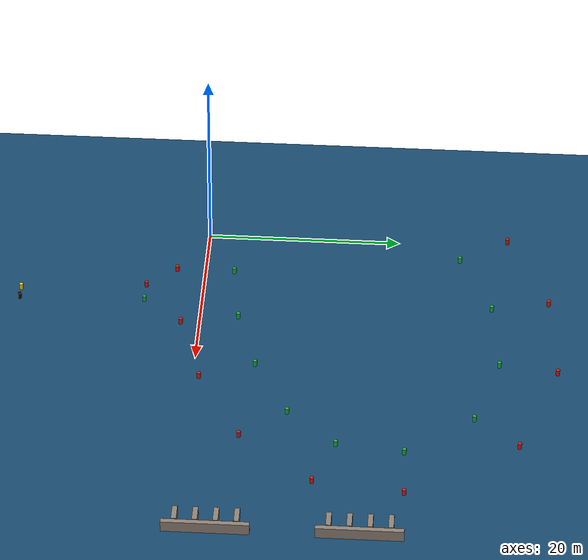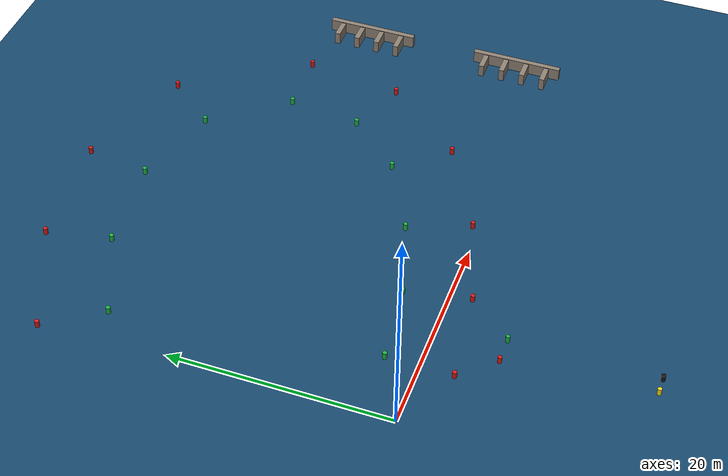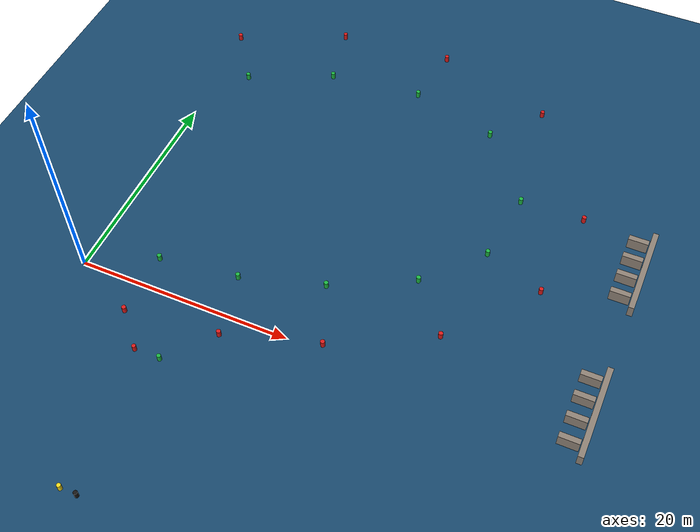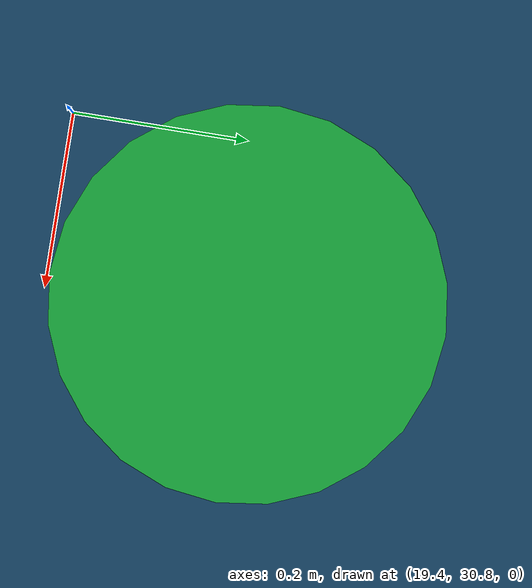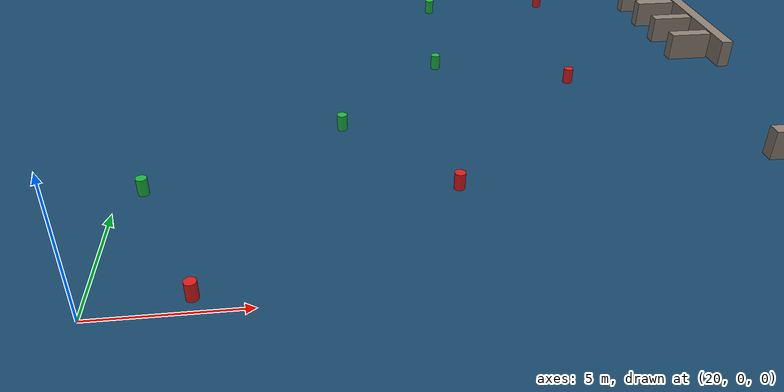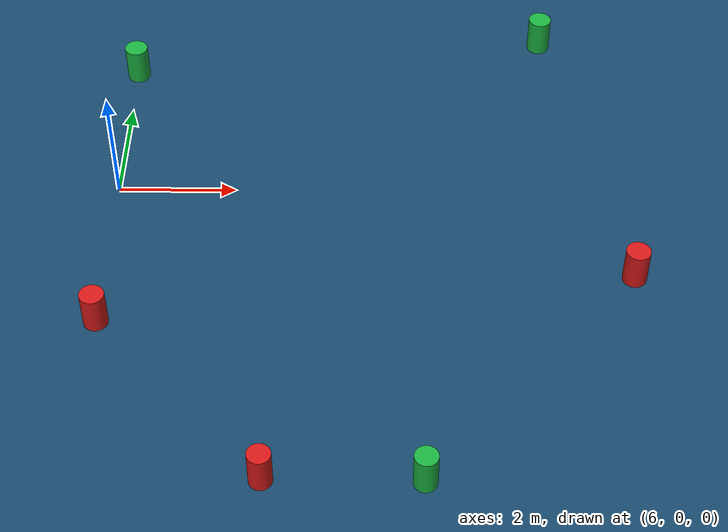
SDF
<?xml version="1.0" ?>
<!-- GENERATED by gen_course.py from course_wide.yaml. Edit the YAML, not this file. -->
<sdf version="1.10">
  <world name="roboboat_course">
    <physics name="fast" type="ignored">
      <max_step_size>0.005</max_step_size>
      <real_time_factor>1.0</real_time_factor>
      <real_time_update_rate>200</real_time_update_rate>
    </physics>
    <plugin filename="gz-sim-physics-system" name="gz::sim::systems::Physics"/>
    <plugin filename="gz-sim-user-commands-system" name="gz::sim::systems::UserCommands"/>
    <plugin filename="gz-sim-scene-broadcaster-system" name="gz::sim::systems::SceneBroadcaster"/>
    <plugin filename="gz-sim-imu-system" name="gz::sim::systems::Imu"/>
    <plugin filename="gz-sim-navsat-system" name="gz::sim::systems::NavSat"/>
    <plugin filename="gz-sim-sensors-system" name="gz::sim::systems::Sensors">
      <render_engine>ogre2</render_engine>
    </plugin>
    <scene>
      <ambient>0.85 0.88 0.92 1</ambient>
      <background>0.55 0.70 0.86 1</background>
      <grid>false</grid>
      <shadows>false</shadows>
    </scene>
    <light type="directional" name="sun">
      <cast_shadows>false</cast_shadows>
      <pose>0.0000 0.0000 40.0000 0.0000 0.0000 0.0000</pose>
      <diffuse>0.9 0.9 0.9 1</diffuse>
      <specular>0.2 0.2 0.2 1</specular>
      <direction>-0.4 0.3 -0.9</direction>
    </light>
    <gravity>0 0 -9.8</gravity>
    <spherical_coordinates>
      <surface_model>EARTH_WGS84</surface_model>
      <world_frame_orientation>ENU</world_frame_orientation>
      <latitude_deg>27.3872</latitude_deg>
      <longitude_deg>-82.459</longitude_deg>
      <elevation>3.0</elevation>
      <heading_deg>0</heading_deg>
    </spherical_coordinates>
    <model name="water">
      <static>true</static>
      <pose>0.0000 0.0000 -0.0200 0.0000 0.0000 0.0000</pose>
      <link name="link">
        <visual name="surface">
          <geometry>
            <box>
              <size>260.0000 260.0000 0.0400</size>
            </box>
          </geometry>
          <material>
            <ambient>0.090 0.280 0.420 1.000</ambient>
            <diffuse>0.090 0.280 0.420 1.000</diffuse>
            <specular>0.1 0.1 0.1 1</specular>
          </material>
        </visual>
      </link>
    </model>
    <model name="gate_start_left">
      <static>true</static>
      <pose>6.0000 3.0000 0.2000 0.0000 0.0000 0.0000</pose>
      <link name="link">
        <visual name="visual">
          <geometry>
            <cylinder>
              <radius>0.2000</radius>
              <length>0.9000</length>
            </cylinder>
          </geometry>
          <material>
            <ambient>0.100 0.700 0.250 1.000</ambient>
            <diffuse>0.100 0.700 0.250 1.000</diffuse>
            <specular>0.1 0.1 0.1 1</specular>
            <emissive>0.025 0.175 0.062 1</emissive>
          </material>
        </visual>
      </link>
    </model>
    <model name="gate_start_right">
      <static>true</static>
      <pose>6.0000 -3.0000 0.2000 0.0000 0.0000 0.0000</pose>
      <link name="link">
        <visual name="visual">
          <geometry>
            <cylinder>
              <radius>0.2000</radius>
              <length>0.9000</length>
            </cylinder>
          </geometry>
          <material>
            <ambient>0.850 0.100 0.100 1.000</ambient>
            <diffuse>0.850 0.100 0.100 1.000</diffuse>
            <specular>0.1 0.1 0.1 1</specular>
            <emissive>0.212 0.025 0.025 1</emissive>
          </material>
        </visual>
      </link>
    </model>
    <model name="gate_chan_a_left">
      <static>true</static>
      <pose>13.3763 3.9344 0.2000 0.0000 0.0000 0.0000</pose>
      <link name="link">
        <visual name="visual">
          <geometry>
            <cylinder>
              <radius>0.2000</radius>
              <length>0.9000</length>
            </cylinder>
          </geometry>
          <material>
            <ambient>0.100 0.700 0.250 1.000</ambient>
            <diffuse>0.100 0.700 0.250 1.000</diffuse>
            <specular>0.1 0.1 0.1 1</specular>
            <emissive>0.025 0.175 0.062 1</emissive>
          </material>
        </visual>
      </link>
    </model>
    <model name="gate_chan_a_right">
      <static>true</static>
      <pose>14.6237 -1.9344 0.2000 0.0000 0.0000 0.0000</pose>
      <link name="link">
        <visual name="visual">
          <geometry>
            <cylinder>
              <radius>0.2000</radius>
              <length>0.9000</length>
            </cylinder>
          </geometry>
          <material>
            <ambient>0.850 0.100 0.100 1.000</ambient>
            <diffuse>0.850 0.100 0.100 1.000</diffuse>
            <specular>0.1 0.1 0.1 1</specular>
            <emissive>0.212 0.025 0.025 1</emissive>
          </material>
        </visual>
      </link>
    </model>
    <model name="gate_chan_b_left">
      <static>true</static>
      <pose>20.8762 6.1816 0.2000 0.0000 0.0000 0.0000</pose>
      <link name="link">
        <visual name="visual">
          <geometry>
            <cylinder>
              <radius>0.2000</radius>
              <length>0.9000</length>
            </cylinder>
          </geometry>
          <material>
            <ambient>0.100 0.700 0.250 1.000</ambient>
            <diffuse>0.100 0.700 0.250 1.000</diffuse>
            <specular>0.1 0.1 0.1 1</specular>
            <emissive>0.025 0.175 0.062 1</emissive>
          </material>
        </visual>
      </link>
    </model>
    <model name="gate_chan_b_right">
      <static>true</static>
      <pose>23.1238 0.6184 0.2000 0.0000 0.0000 0.0000</pose>
      <link name="link">
        <visual name="visual">
          <geometry>
            <cylinder>
              <radius>0.2000</radius>
              <length>0.9000</length>
            </cylinder>
          </geometry>
          <material>
            <ambient>0.850 0.100 0.100 1.000</ambient>
            <diffuse>0.850 0.100 0.100 1.000</diffuse>
            <specular>0.1 0.1 0.1 1</specular>
            <emissive>0.212 0.025 0.025 1</emissive>
          </material>
        </visual>
      </link>
    </model>
    <model name="gate_chan_c_left">
      <static>true</static>
      <pose>28.0716 9.8981 0.2000 0.0000 0.0000 0.0000</pose>
      <link name="link">
        <visual name="visual">
          <geometry>
            <cylinder>
              <radius>0.2000</radius>
              <length>0.9000</length>
            </cylinder>
          </geometry>
          <material>
            <ambient>0.100 0.700 0.250 1.000</ambient>
            <diffuse>0.100 0.700 0.250 1.000</diffuse>
            <specular>0.1 0.1 0.1 1</specular>
            <emissive>0.025 0.175 0.062 1</emissive>
          </material>
        </visual>
      </link>
    </model>
    <model name="gate_chan_c_right">
      <static>true</static>
      <pose>31.9284 5.3019 0.2000 0.0000 0.0000 0.0000</pose>
      <link name="link">
        <visual name="visual">
          <geometry>
            <cylinder>
              <radius>0.2000</radius>
              <length>0.9000</length>
            </cylinder>
          </geometry>
          <material>
            <ambient>0.850 0.100 0.100 1.000</ambient>
            <diffuse>0.850 0.100 0.100 1.000</diffuse>
            <specular>0.1 0.1 0.1 1</specular>
            <emissive>0.212 0.025 0.025 1</emissive>
          </material>
        </visual>
      </link>
    </model>
    <model name="gate_chan_d_left">
      <static>true</static>
      <pose>32.6809 15.0261 0.2000 0.0000 0.0000 0.0000</pose>
      <link name="link">
        <visual name="visual">
          <geometry>
            <cylinder>
              <radius>0.2000</radius>
              <length>0.9000</length>
            </cylinder>
          </geometry>
          <material>
            <ambient>0.100 0.700 0.250 1.000</ambient>
            <diffuse>0.100 0.700 0.250 1.000</diffuse>
            <specular>0.1 0.1 0.1 1</specular>
            <emissive>0.025 0.175 0.062 1</emissive>
          </material>
        </visual>
      </link>
    </model>
    <model name="gate_chan_d_right">
      <static>true</static>
      <pose>38.3191 12.9739 0.2000 0.0000 0.0000 0.0000</pose>
      <link name="link">
        <visual name="visual">
          <geometry>
            <cylinder>
              <radius>0.2000</radius>
              <length>0.9000</length>
            </cylinder>
          </geometry>
          <material>
            <ambient>0.850 0.100 0.100 1.000</ambient>
            <diffuse>0.850 0.100 0.100 1.000</diffuse>
            <specular>0.1 0.1 0.1 1</specular>
            <emissive>0.212 0.025 0.025 1</emissive>
          </material>
        </visual>
      </link>
    </model>
    <model name="gate_speed_in_left">
      <static>true</static>
      <pose>33.5018 21.8953 0.2000 0.0000 0.0000 0.0000</pose>
      <link name="link">
        <visual name="visual">
          <geometry>
            <cylinder>
              <radius>0.2000</radius>
              <length>0.9000</length>
            </cylinder>
          </geometry>
          <material>
            <ambient>0.100 0.700 0.250 1.000</ambient>
            <diffuse>0.100 0.700 0.250 1.000</diffuse>
            <specular>0.1 0.1 0.1 1</specular>
            <emissive>0.025 0.175 0.062 1</emissive>
          </material>
        </visual>
      </link>
    </model>
    <model name="gate_speed_in_right">
      <static>true</static>
      <pose>39.4982 22.1047 0.2000 0.0000 0.0000 0.0000</pose>
      <link name="link">
        <visual name="visual">
          <geometry>
            <cylinder>
              <radius>0.2000</radius>
              <length>0.9000</length>
            </cylinder>
          </geometry>
          <material>
            <ambient>0.850 0.100 0.100 1.000</ambient>
            <diffuse>0.850 0.100 0.100 1.000</diffuse>
            <specular>0.1 0.1 0.1 1</specular>
            <emissive>0.212 0.025 0.025 1</emissive>
          </material>
        </visual>
      </link>
    </model>
    <model name="gate_speed_out_left">
      <static>true</static>
      <pose>28.0716 28.7019 0.2000 0.0000 0.0000 0.0000</pose>
      <link name="link">
        <visual name="visual">
          <geometry>
            <cylinder>
              <radius>0.2000</radius>
              <length>0.9000</length>
            </cylinder>
          </geometry>
          <material>
            <ambient>0.100 0.700 0.250 1.000</ambient>
            <diffuse>0.100 0.700 0.250 1.000</diffuse>
            <specular>0.1 0.1 0.1 1</specular>
            <emissive>0.025 0.175 0.062 1</emissive>
          </material>
        </visual>
      </link>
    </model>
    <model name="gate_speed_out_right">
      <static>true</static>
      <pose>31.9284 33.2981 0.2000 0.0000 0.0000 0.0000</pose>
      <link name="link">
        <visual name="visual">
          <geometry>
            <cylinder>
              <radius>0.2000</radius>
              <length>0.9000</length>
            </cylinder>
          </geometry>
          <material>
            <ambient>0.850 0.100 0.100 1.000</ambient>
            <diffuse>0.850 0.100 0.100 1.000</diffuse>
            <specular>0.1 0.1 0.1 1</specular>
            <emissive>0.212 0.025 0.025 1</emissive>
          </material>
        </visual>
      </link>
    </model>
    <model name="gate_return_a_left">
      <static>true</static>
      <pose>19.5825 31.0292 0.2000 0.0000 0.0000 0.0000</pose>
      <link name="link">
        <visual name="visual">
          <geometry>
            <cylinder>
              <radius>0.2000</radius>
              <length>0.9000</length>
            </cylinder>
          </geometry>
          <material>
            <ambient>0.100 0.700 0.250 1.000</ambient>
            <diffuse>0.100 0.700 0.250 1.000</diffuse>
            <specular>0.1 0.1 0.1 1</specular>
            <emissive>0.025 0.175 0.062 1</emissive>
          </material>
        </visual>
      </link>
    </model>
    <model name="gate_return_a_right">
      <static>true</static>
      <pose>20.4175 36.9708 0.2000 0.0000 0.0000 0.0000</pose>
      <link name="link">
        <visual name="visual">
          <geometry>
            <cylinder>
              <radius>0.2000</radius>
              <length>0.9000</length>
            </cylinder>
          </geometry>
          <material>
            <ambient>0.850 0.100 0.100 1.000</ambient>
            <diffuse>0.850 0.100 0.100 1.000</diffuse>
            <specular>0.1 0.1 0.1 1</specular>
            <emissive>0.212 0.025 0.025 1</emissive>
          </material>
        </visual>
      </link>
    </model>
    <model name="gate_return_b_left">
      <static>true</static>
      <pose>10.6237 30.0656 0.2000 0.0000 0.0000 0.0000</pose>
      <link name="link">
        <visual name="visual">
          <geometry>
            <cylinder>
              <radius>0.2000</radius>
              <length>0.9000</length>
            </cylinder>
          </geometry>
          <material>
            <ambient>0.100 0.700 0.250 1.000</ambient>
            <diffuse>0.100 0.700 0.250 1.000</diffuse>
            <specular>0.1 0.1 0.1 1</specular>
            <emissive>0.025 0.175 0.062 1</emissive>
          </material>
        </visual>
      </link>
    </model>
    <model name="gate_return_b_right">
      <static>true</static>
      <pose>9.3763 35.9344 0.2000 0.0000 0.0000 0.0000</pose>
      <link name="link">
        <visual name="visual">
          <geometry>
            <cylinder>
              <radius>0.2000</radius>
              <length>0.9000</length>
            </cylinder>
          </geometry>
          <material>
            <ambient>0.850 0.100 0.100 1.000</ambient>
            <diffuse>0.850 0.100 0.100 1.000</diffuse>
            <specular>0.1 0.1 0.1 1</specular>
            <emissive>0.212 0.025 0.025 1</emissive>
          </material>
        </visual>
      </link>
    </model>
    <model name="gate_finish_left">
      <static>true</static>
      <pose>2.7207 26.5425 0.2000 0.0000 0.0000 0.0000</pose>
      <link name="link">
        <visual name="visual">
          <geometry>
            <cylinder>
              <radius>0.2000</radius>
              <length>0.9000</length>
            </cylinder>
          </geometry>
          <material>
            <ambient>0.100 0.700 0.250 1.000</ambient>
            <diffuse>0.100 0.700 0.250 1.000</diffuse>
            <specular>0.1 0.1 0.1 1</specular>
            <emissive>0.025 0.175 0.062 1</emissive>
          </material>
        </visual>
      </link>
    </model>
    <model name="gate_finish_right">
      <static>true</static>
      <pose>-0.7207 31.4575 0.2000 0.0000 0.0000 0.0000</pose>
      <link name="link">
        <visual name="visual">
          <geometry>
            <cylinder>
              <radius>0.2000</radius>
              <length>0.9000</length>
            </cylinder>
          </geometry>
          <material>
            <ambient>0.850 0.100 0.100 1.000</ambient>
            <diffuse>0.850 0.100 0.100 1.000</diffuse>
            <specular>0.1 0.1 0.1 1</specular>
            <emissive>0.212 0.025 0.025 1</emissive>
          </material>
        </visual>
      </link>
    </model>
    <model name="gate_sprint_gate_left">
      <static>true</static>
      <pose>11.2000 -6.0000 0.2000 0.0000 0.0000 0.0000</pose>
      <link name="link">
        <visual name="visual">
          <geometry>
            <cylinder>
              <radius>0.1840</radius>
              <length>0.9000</length>
            </cylinder>
          </geometry>
          <material>
            <ambient>0.100 0.700 0.250 1.000</ambient>
            <diffuse>0.100 0.700 0.250 1.000</diffuse>
            <specular>0.1 0.1 0.1 1</specular>
            <emissive>0.025 0.175 0.062 1</emissive>
          </material>
        </visual>
      </link>
    </model>
    <model name="gate_sprint_gate_right">
      <static>true</static>
      <pose>8.8000 -6.0000 0.2000 0.0000 0.0000 0.0000</pose>
      <link name="link">
        <visual name="visual">
          <geometry>
            <cylinder>
              <radius>0.1840</radius>
              <length>0.9000</length>
            </cylinder>
          </geometry>
          <material>
            <ambient>0.850 0.100 0.100 1.000</ambient>
            <diffuse>0.850 0.100 0.100 1.000</diffuse>
            <specular>0.1 0.1 0.1 1</specular>
            <emissive>0.212 0.025 0.025 1</emissive>
          </material>
        </visual>
      </link>
    </model>
    <model name="buoy_sprint_mark">
      <static>true</static>
      <pose>10.0000 -19.0000 0.2000 0.0000 0.0000 0.0000</pose>
      <link name="link">
        <visual name="visual">
          <geometry>
            <cylinder>
              <radius>0.1840</radius>
              <length>0.9000</length>
            </cylinder>
          </geometry>
          <material>
            <ambient>0.950 0.850 0.100 1.000</ambient>
            <diffuse>0.950 0.850 0.100 1.000</diffuse>
            <specular>0.1 0.1 0.1 1</specular>
            <emissive>0.237 0.212 0.025 1</emissive>
          </material>
        </visual>
      </link>
    </model>
    <model name="buoy_sprint_obstacle">
      <static>true</static>
      <pose>11.5000 -19.0000 0.2000 0.0000 0.0000 0.0000</pose>
      <link name="link">
        <visual name="visual">
          <geometry>
            <cylinder>
              <radius>0.1840</radius>
              <length>0.9000</length>
            </cylinder>
          </geometry>
          <material>
            <ambient>0.080 0.080 0.080 1.000</ambient>
            <diffuse>0.080 0.080 0.080 1.000</diffuse>
            <specular>0.1 0.1 0.1 1</specular>
            <emissive>0.020 0.020 0.020 1</emissive>
          </material>
        </visual>
      </link>
    </model>
    <model name="wall_dock_s_spine">
      <static>true</static>
      <pose>46.0000 3.0500 0.6000 0.0000 0.0000 1.5708</pose>
      <link name="link">
        <visual name="visual">
          <geometry>
            <box>
              <size>8.6400 0.5100 1.2000</size>
            </box>
          </geometry>
          <material>
            <ambient>0.550 0.500 0.450 1.000</ambient>
            <diffuse>0.550 0.500 0.450 1.000</diffuse>
            <specular>0.1 0.1 0.1 1</specular>
            <emissive>0.138 0.125 0.113 1</emissive>
          </material>
        </visual>
      </link>
    </model>
    <model name="wall_dock_s_tine_1">
      <static>true</static>
      <pose>44.7500 -0.0200 0.6000 0.0000 0.0000 0.0000</pose>
      <link name="link">
        <visual name="visual">
          <geometry>
            <box>
              <size>1.8300 0.5100 1.2000</size>
            </box>
          </geometry>
          <material>
            <ambient>0.550 0.500 0.450 1.000</ambient>
            <diffuse>0.550 0.500 0.450 1.000</diffuse>
            <specular>0.1 0.1 0.1 1</specular>
            <emissive>0.138 0.125 0.113 1</emissive>
          </material>
        </visual>
      </link>
    </model>
    <model name="wall_dock_s_tine_2">
      <static>true</static>
      <pose>44.7500 2.0100 0.6000 0.0000 0.0000 0.0000</pose>
      <link name="link">
        <visual name="visual">
          <geometry>
            <box>
              <size>1.8300 0.5100 1.2000</size>
            </box>
          </geometry>
          <material>
            <ambient>0.550 0.500 0.450 1.000</ambient>
            <diffuse>0.550 0.500 0.450 1.000</diffuse>
            <specular>0.1 0.1 0.1 1</specular>
            <emissive>0.138 0.125 0.113 1</emissive>
          </material>
        </visual>
      </link>
    </model>
    <model name="wall_dock_s_tine_3">
      <static>true</static>
      <pose>44.7500 4.0400 0.6000 0.0000 0.0000 0.0000</pose>
      <link name="link">
        <visual name="visual">
          <geometry>
            <box>
              <size>1.8300 0.5100 1.2000</size>
            </box>
          </geometry>
          <material>
            <ambient>0.550 0.500 0.450 1.000</ambient>
            <diffuse>0.550 0.500 0.450 1.000</diffuse>
            <specular>0.1 0.1 0.1 1</specular>
            <emissive>0.138 0.125 0.113 1</emissive>
          </material>
        </visual>
      </link>
    </model>
    <model name="wall_dock_s_tine_4">
      <static>true</static>
      <pose>44.7500 6.0700 0.6000 0.0000 0.0000 0.0000</pose>
      <link name="link">
        <visual name="visual">
          <geometry>
            <box>
              <size>1.8300 0.5100 1.2000</size>
            </box>
          </geometry>
          <material>
            <ambient>0.550 0.500 0.450 1.000</ambient>
            <diffuse>0.550 0.500 0.450 1.000</diffuse>
            <specular>0.1 0.1 0.1 1</specular>
            <emissive>0.138 0.125 0.113 1</emissive>
          </material>
        </visual>
      </link>
    </model>
    <model name="wall_dock_n_spine">
      <static>true</static>
      <pose>46.0000 18.0500 0.6000 0.0000 0.0000 1.5708</pose>
      <link name="link">
        <visual name="visual">
          <geometry>
            <box>
              <size>8.6400 0.5100 1.2000</size>
            </box>
          </geometry>
          <material>
            <ambient>0.550 0.500 0.450 1.000</ambient>
            <diffuse>0.550 0.500 0.450 1.000</diffuse>
            <specular>0.1 0.1 0.1 1</specular>
            <emissive>0.138 0.125 0.113 1</emissive>
          </material>
        </visual>
      </link>
    </model>
    <model name="wall_dock_n_tine_1">
      <static>true</static>
      <pose>44.7500 14.9800 0.6000 0.0000 0.0000 0.0000</pose>
      <link name="link">
        <visual name="visual">
          <geometry>
            <box>
              <size>1.8300 0.5100 1.2000</size>
            </box>
          </geometry>
          <material>
            <ambient>0.550 0.500 0.450 1.000</ambient>
            <diffuse>0.550 0.500 0.450 1.000</diffuse>
            <specular>0.1 0.1 0.1 1</specular>
            <emissive>0.138 0.125 0.113 1</emissive>
          </material>
        </visual>
      </link>
    </model>
    <model name="wall_dock_n_tine_2">
      <static>true</static>
      <pose>44.7500 17.0100 0.6000 0.0000 0.0000 0.0000</pose>
      <link name="link">
        <visual name="visual">
          <geometry>
            <box>
              <size>1.8300 0.5100 1.2000</size>
            </box>
          </geometry>
          <material>
            <ambient>0.550 0.500 0.450 1.000</ambient>
            <diffuse>0.550 0.500 0.450 1.000</diffuse>
            <specular>0.1 0.1 0.1 1</specular>
            <emissive>0.138 0.125 0.113 1</emissive>
          </material>
        </visual>
      </link>
    </model>
    <model name="wall_dock_n_tine_3">
      <static>true</static>
      <pose>44.7500 19.0400 0.6000 0.0000 0.0000 0.0000</pose>
      <link name="link">
        <visual name="visual">
          <geometry>
            <box>
              <size>1.8300 0.5100 1.2000</size>
            </box>
          </geometry>
          <material>
            <ambient>0.550 0.500 0.450 1.000</ambient>
            <diffuse>0.550 0.500 0.450 1.000</diffuse>
            <specular>0.1 0.1 0.1 1</specular>
            <emissive>0.138 0.125 0.113 1</emissive>
          </material>
        </visual>
      </link>
    </model>
    <model name="wall_dock_n_tine_4">
      <static>true</static>
      <pose>44.7500 21.0700 0.6000 0.0000 0.0000 0.0000</pose>
      <link name="link">
        <visual name="visual">
          <geometry>
            <box>
              <size>1.8300 0.5100 1.2000</size>
            </box>
          </geometry>
          <material>
            <ambient>0.550 0.500 0.450 1.000</ambient>
            <diffuse>0.550 0.500 0.450 1.000</diffuse>
            <specular>0.1 0.1 0.1 1</specular>
            <emissive>0.138 0.125 0.113 1</emissive>
          </material>
        </visual>
      </link>
    </model>
  </world>
</sdf>
